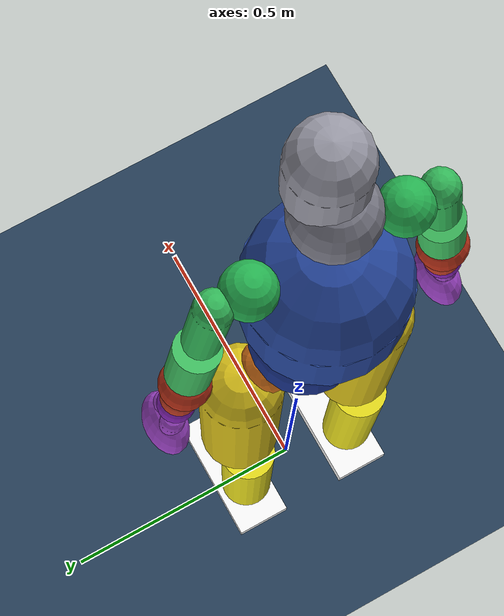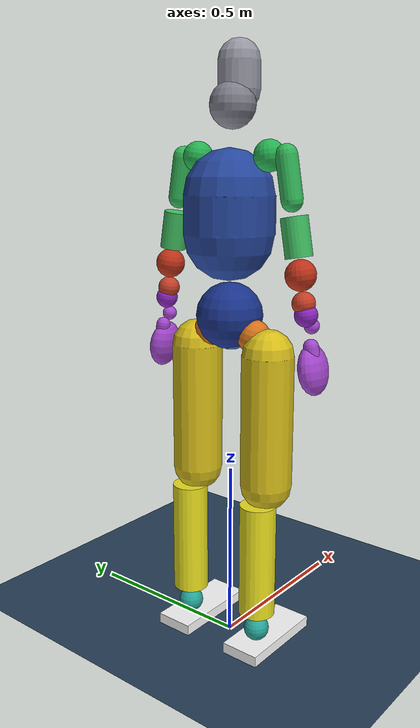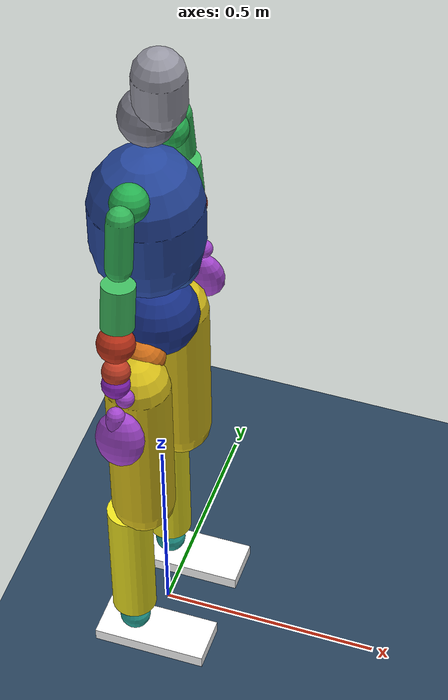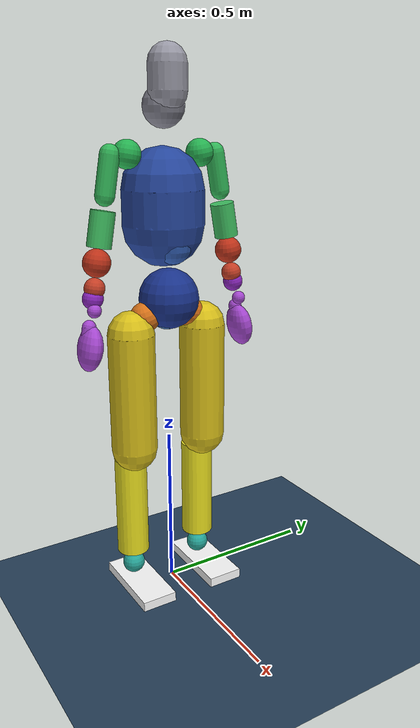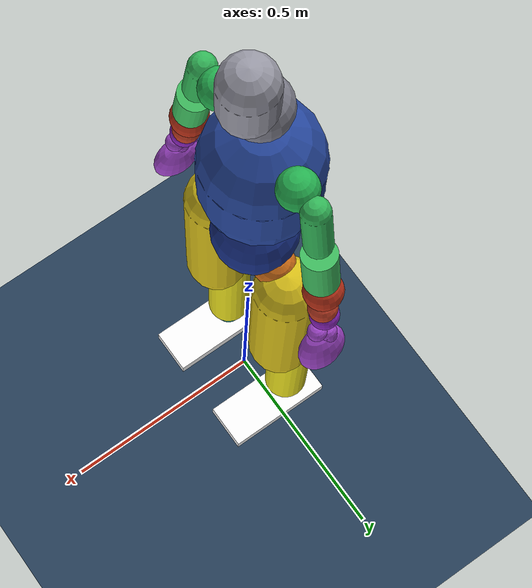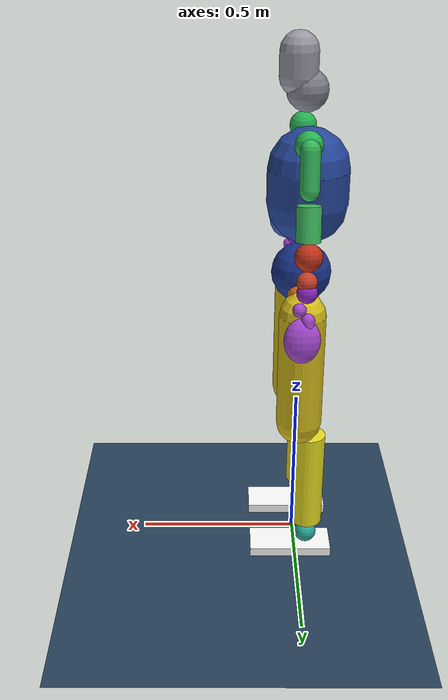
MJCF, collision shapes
<mujoco model="walker_astron_v1_wf">
  <compiler angle="radian" meshdir="../meshes" boundmass="0.0001" />
  <statistic meansize="0.153242" extent="1.93355" center="-0.0171695 0.000234755 -0.0746939" />
  <default>
    <joint damping="1.0" frictionloss="0.2" armature="0.01" />
    <!-- IsaacLab trains this robot with self-collisions disabled. Robot geoms
         keep contype=1 so they still collide with the floor's conaffinity=1. -->
    <geom conaffinity="0" />
    <default class="link">
      <default class="visual">
        <geom type="mesh" contype="0" conaffinity="0" group="1" density="0" rgba="0.75294 0.75294 0.75294 1" />
      </default>
    </default>
  </default>
  <asset>
    <mesh name="base_link" file="base_link.STL" />
    <mesh name="waist_yaw_link" file="waist_yaw_link.STL" />
    <mesh name="waist_pitch_link" file="waist_pitch_link.STL" />
    <mesh name="waist_roll_link" file="waist_roll_link.STL" />
    <mesh name="waist_roll_link1" file="waist_roll_link1.STL" />
    <mesh name="head_yaw_link" file="head_yaw_link.STL" />
    <mesh name="head_pitch_link" file="head_pitch_link.STL" />
    <mesh name="head_pitch_link1" file="head_pitch_link1.STL" />
    <mesh name="L_hip_pitch_link" file="L_hip_pitch_link.STL" />
    <mesh name="L_hip_roll_link" file="L_hip_roll_link.STL" />
    <mesh name="L_hip_yaw_link" file="L_hip_yaw_link.STL" />
    <mesh name="L_knee_pitch_link" file="L_knee_pitch_link.STL" />
    <mesh name="L_ankle_pitch_link" file="L_ankle_pitch_link.STL" />
    <mesh name="L_ankle_roll_link" file="L_ankle_roll_link.STL" />
    <mesh name="R_hip_pitch_link" file="R_hip_pitch_link.STL" />
    <mesh name="R_hip_roll_link" file="R_hip_roll_link.STL" />
    <mesh name="R_hip_yaw_link" file="R_hip_yaw_link.STL" />
    <mesh name="R_knee_pitch_link" file="R_knee_pitch_link.STL" />
    <mesh name="R_ankle_pitch_link" file="R_ankle_pitch_link.STL" />
    <mesh name="R_ankle_roll_link" file="R_ankle_roll_link.STL" />
    <mesh name="L_shoulder_pitch_link" file="L_shoulder_pitch_link.STL" />
    <mesh name="L_shoulder_roll_link" file="L_shoulder_roll_link.STL" />
    <mesh name="L_shoulder_yaw_link" file="L_shoulder_yaw_link.STL" />
    <mesh name="L_elbow_pitch_link" file="L_elbow_pitch_link.STL" />
    <mesh name="L_elbow_yaw_link" file="L_elbow_yaw_link.STL" />
    <mesh name="L_wrist_pitch_link" file="L_wrist_pitch_link.STL" />
    <mesh name="L_wrist_roll_link" file="L_wrist_roll_link.STL" />
    <mesh name="left_rubber_hand" file="left_rubber_hand.STL" />
    <mesh name="R_shoulder_pitch_link" file="R_shoulder_pitch_link.STL" />
    <mesh name="R_shoulder_roll_link" file="R_shoulder_roll_link.STL" />
    <mesh name="R_shoulder_yaw_link" file="R_shoulder_yaw_link.STL" />
    <mesh name="R_elbow_pitch_link" file="R_elbow_pitch_link.STL" />
    <mesh name="R_elbow_yaw_link" file="R_elbow_yaw_link.STL" />
    <mesh name="R_wrist_pitch_link" file="R_wrist_pitch_link.STL" />
    <mesh name="R_wrist_roll_link" file="R_wrist_roll_link.STL" />
    <mesh name="right_rubber_hand" file="right_rubber_hand.STL" />
  </asset>
  <worldbody>
    <body name="base_link" pos="0 0 0.91">
      <inertial pos="-0.000607409 0 -0.00390457" quat="0.707095 0.70711 0.00349219 -0.000861889" mass="5.32923" diaginertia="0.0256183 0.0239746 0.0175109" />
      <joint name="floating_base" type="free" />
      <geom type="mesh" mesh="base_link" class="visual" />
      <geom name="base_link_collision" type="sphere" size="0.06" pos="0 0 -0.004" rgba="0.22 0.40 0.65 0.3"/>
      <site name="imu" size="0.01"/>
      <body name="L_hip_pitch_link" pos="0 0.073499 -0.019694" quat="0.991445 -0.130526 0 0">
        <inertial pos="0.0048541 0.0500696 -0.0150271" quat="0.245039 0.652073 0.417654 0.583372" mass="1.65569" diaginertia="0.00293392 0.00256263 0.00240876" />
        <joint name="L_hip_pitch_joint" pos="0 0 0" axis="0 1 0" limited="true" range="-2.98 2.53" actuatorfrcrange="-210 210" armature="0.199" />
        <geom type="mesh" mesh="L_hip_pitch_link" class="visual" />
        <geom name="L_hip_pitch_collision" type="sphere" size="0.045" rgba="0.85 0.45 0.10 0.3"/>
        <body name="L_hip_roll_link" pos="0 0.0535795 -0.02" quat="0.991445 0.130526 0 0">
          <inertial pos="0.00120874 0.00203626 -0.0330367" quat="0.513666 0.487315 0.496385 0.502267" mass="0.514808" diaginertia="0.00158831 0.0015264 0.000682669" />
          <joint name="L_hip_roll_joint" pos="0 0 0" axis="1 0 0" limited="true" range="-0.314 2.059" actuatorfrcrange="-165 165" armature="0.064" />
          <geom type="mesh" mesh="L_hip_roll_link" class="visual" />
          <geom name="L_hip_roll_collision" type="sphere" size="0.065" pos="0 0 -0.033" rgba="0.90 0.62 0.15 0.3"/>
          <body name="L_hip_yaw_link" pos="0 0 -0.0621">
            <inertial pos="-0.00120768 -0.00740878 -0.123895" quat="0.723017 0.011601 0.0200665 0.690441" mass="5.13193" diaginertia="0.0446202 0.0424782 0.0109089" />
            <joint name="L_hip_yaw_joint" pos="0 0 0" axis="0 0 1" limited="true" range="-2.146 3.246" actuatorfrcrange="-110 110" armature="0.054" />
            <geom type="mesh" mesh="L_hip_yaw_link" class="visual" />
            <geom name="L_hip_yaw_collision" type="capsule" size="0.07 0.18" pos="0 0 -0.13" rgba="0.85 0.75 0.10 0.3"/>
            <body name="L_knee_pitch_link" pos="-0.035 0 -0.3179">
              <inertial pos="0.00270804 3.653e-05 -0.160407" quat="0.705286 0.0123666 0.015597 0.708643" mass="3.32222" diaginertia="0.0369622 0.0367307 0.00346204" />
              <joint name="L_knee_pitch_joint" pos="0 0 0" axis="0 1 0" limited="true" range="0.09 2.478" actuatorfrcrange="-210 210" armature="0.199" />
              <geom type="mesh" mesh="L_knee_pitch_link" class="visual" />
              <geom name="L_knee_pitch_collision" type="cylinder" size="0.05 0.16" pos="0 0 -0.2" rgba="0.92 0.88 0.12 0.3"/>
              <body name="L_ankle_pitch_link" pos="0 0 -0.41">
                <inertial pos="-0.00012374 -0.00221434 -0.0057231" quat="0.0409104 0.70465 0.0378602 0.707362" mass="0.110584" diaginertia="4.6937e-05 3.42735e-05 2.57096e-05" />
                <joint name="L_ankle_pitch_joint" pos="0 0 0" axis="0 1 0" limited="true" range="-1.012 0.488" actuatorfrcrange="-60 60" armature="0.016" />
                <geom type="mesh" mesh="L_ankle_pitch_link" class="visual" />
                <geom name="L_ankle_pitch_collision" type="sphere" size="0.035" rgba="0.15 0.65 0.60 0.3"/>
                <body name="L_ankle_roll_link" pos="0 0 -0.012">
                  <inertial pos="0.0340591 2.01976e-06 -0.0209935" quat="-4.35039e-05 0.733437 -6.93434e-06 0.679758" mass="0.826971" diaginertia="0.00492009 0.00442451 0.000968886" />
                  <joint name="L_ankle_roll_joint" pos="0 0 0" axis="1 0 0" limited="true" range="-0.401 0.401" actuatorfrcrange="-60 60" armature="0.016" />
                  <geom type="mesh" mesh="L_ankle_roll_link" class="visual" />
                  <geom name="L_ankle_roll_collision" type="box" size="0.13 0.055 0.015" pos="0.05 0 -0.035" rgba="1 1 1 0.3"/>
                  <geom name="L_foot_end_outer"      pos="-0.049  0.0  -0.045" size="0.005 0.005" type="cylinder" rgba="0.10 0.50 0.50 1" contype="0" conaffinity="0"/>
                  <geom name="L_foot_front_outer"    size="0.01 0.001" pos="0.155 -0.03 -0.045" type="cylinder" rgba="0.10 0.50 0.50 1" contype="0" conaffinity="0"/>
                  <geom name="L_foot_front_inner"    size="0.01 0.001" pos="0.145  0.03 -0.045" type="cylinder" rgba="0.10 0.50 0.50 1" contype="0" conaffinity="0"/>
                  <geom name="L_foot_mid_outer"      size="0.01 0.001" pos="0.045 -0.02 -0.045" type="cylinder" rgba="0.10 0.50 0.50 1" contype="0" conaffinity="0"/>
                  <geom name="L_foot_mid_inner"      size="0.01 0.001" pos="0.045  0.02 -0.045" type="cylinder" rgba="0.10 0.50 0.50 1" contype="0" conaffinity="0"/>
                  <geom name="L_foot_strip_outer"    size="0.01 0.001" pos="0.095 -0.01 -0.045" type="cylinder" rgba="0.10 0.50 0.50 1" contype="0" conaffinity="0"/>
                  <geom name="toe1_left_collision"   size="0.01 0.015" pos="0.155  0.03 -0.045" type="cylinder" rgba="0.10 0.50 0.50 1" contype="0" conaffinity="0"/>
                  <geom name="toe2_left_collision"   size="0.01 0.015" pos="0.155 -0.03 -0.045" type="cylinder" rgba="0.10 0.50 0.50 1" contype="0" conaffinity="0"/>
                  <geom name="foot_left_sole" type="sphere" size="0.005" pos="0 0 -0.05" rgba="0 0 0 0" contype="0" conaffinity="0"/>
                  <site name="left_foot_end" pos="0.15 0 -0.03" size="0.008" rgba="0 1 0 1"/>
                  <site name="left_foot_force" pos="0 0 -0.05"/>
                  <site name="left_foot_torque" pos="0 0 -0.05"/>
                </body>
              </body>
            </body>
          </body>
        </body>
      </body>
      <body name="R_hip_pitch_link" pos="0 -0.0734226 -0.0196735" quat="0.991445 0.130526 0 0">
        <inertial pos="0.0062436 -0.0504262 -0.014716" quat="0.519984 0.459924 0.700462 0.165648" mass="1.65592" diaginertia="0.00288142 0.00250814 0.00239465" />
        <joint name="R_hip_pitch_joint" pos="0 0 0" axis="0 1 0" limited="true" range="-2.98 2.53" actuatorfrcrange="-210 210" armature="0.199" />
        <geom type="mesh" mesh="R_hip_pitch_link" class="visual" />
        <geom name="R_hip_pitch_collision" type="sphere" size="0.045" rgba="0.85 0.45 0.10 0.3"/>
        <body name="R_hip_roll_link" pos="0 -0.053579 -0.02" quat="0.991445 -0.130526 0 0">
          <inertial pos="0.00120761 -0.00204745 -0.033039" quat="0.502185 0.496301 0.487383 0.513764" mass="0.514808" diaginertia="0.00158819 0.00152639 0.000682655" />
          <joint name="R_hip_roll_joint" pos="0 0 0" axis="1 0 0" limited="true" range="-2.059 0.314" actuatorfrcrange="-165 165" armature="0.064" />
          <geom type="mesh" mesh="R_hip_roll_link" class="visual" />
          <geom name="R_hip_roll_collision" type="sphere" size="0.065" pos="0 0 -0.033" rgba="0.90 0.62 0.15 0.3"/>
          <body name="R_hip_yaw_link" pos="0 0 -0.0621">
            <inertial pos="-0.00120109 0.00740989 -0.123888" quat="0.688781 0.0189619 0.0104703 0.724645" mass="5.13155" diaginertia="0.0446208 0.04247 0.0109153" />
            <joint name="R_hip_yaw_joint" pos="0 0 0" axis="0 0 1" limited="true" range="-3.246 2.146" actuatorfrcrange="-110 110" armature="0.054" />
            <geom type="mesh" mesh="R_hip_yaw_link" class="visual" />
            <geom name="R_hip_yaw_collision" type="capsule" size="0.07 0.18" pos="0 0 -0.13" rgba="0.85 0.75 0.10 0.3"/>
            <body name="R_knee_pitch_link" pos="-0.035 0 -0.3179">
              <inertial pos="0.00271353 -0.00017413 -0.160478" quat="0.734924 0.0149851 0.0127119 0.677864" mass="3.32312" diaginertia="0.0369759 0.0367282 0.00345006" />
              <joint name="R_knee_pitch_joint" pos="0 0 0" axis="0 1 0" limited="true" range="0.09 2.478" actuatorfrcrange="-210 210" armature="0.199" />
              <geom type="mesh" mesh="R_knee_pitch_link" class="visual" />
              <geom name="R_knee_pitch_collision" type="cylinder" size="0.05 0.16" pos="0 0 -0.2" rgba="0.92 0.88 0.12 0.3"/>
              <body name="R_ankle_pitch_link" pos="0 0 -0.41">
                <inertial pos="0.00012374 0.00221434 -0.0057231" quat="-0.0378602 0.707362 -0.0409104 0.70465" mass="0.110584" diaginertia="4.6937e-05 3.42735e-05 2.57096e-05" />
                <joint name="R_ankle_pitch_joint" pos="0 0 0" axis="0 1 0" limited="true" range="-1.012 0.488" actuatorfrcrange="-60 60" armature="0.016" />
                <geom type="mesh" mesh="R_ankle_pitch_link" class="visual" />
                <geom name="R_ankle_pitch_collision" type="sphere" size="0.035" rgba="0.15 0.65 0.60 0.3"/>
                <body name="R_ankle_roll_link" pos="0 0 -0.012">
                  <inertial pos="0.0340591 2.01976e-06 -0.0209935" quat="-4.35039e-05 0.733437 -6.93434e-06 0.679758" mass="0.826971" diaginertia="0.00492009 0.00442451 0.000968886" />
                  <joint name="R_ankle_roll_joint" pos="0 0 0" axis="1 0 0" limited="true" range="-0.401 0.401" actuatorfrcrange="-60 60" armature="0.016" />
                  <geom type="mesh" mesh="R_ankle_roll_link" class="visual" />
                  <geom name="R_ankle_roll_collision" type="box" size="0.13 0.055 0.015" pos="0.05 0 -0.035" rgba="1 1 1 0.3"/>
                  <geom name="R_foot_end_outer"      pos="-0.049  0.0  -0.045" size="0.005 0.005" type="cylinder" rgba="0.10 0.50 0.50 1" contype="0" conaffinity="0"/>
                  <geom name="R_foot_front_outer"    size="0.01 0.001" pos="0.155 -0.03 -0.045" type="cylinder" rgba="0.10 0.50 0.50 1" contype="0" conaffinity="0"/>
                  <geom name="R_foot_front_inner"    size="0.01 0.001" pos="0.145  0.03 -0.045" type="cylinder" rgba="0.10 0.50 0.50 1" contype="0" conaffinity="0"/>
                  <geom name="R_foot_mid_outer"      size="0.01 0.001" pos="0.045 -0.02 -0.045" type="cylinder" rgba="0.10 0.50 0.50 1" contype="0" conaffinity="0"/>
                  <geom name="R_foot_mid_inner"      size="0.01 0.001" pos="0.045  0.02 -0.045" type="cylinder" rgba="0.10 0.50 0.50 1" contype="0" conaffinity="0"/>
                  <geom name="R_foot_strip_outer"    size="0.01 0.001" pos="0.095 -0.01 -0.045" type="cylinder" rgba="0.10 0.50 0.50 1" contype="0" conaffinity="0"/>
                  <geom name="toe1_right_collision"  size="0.01 0.015" pos="0.155  0.03 -0.045" type="cylinder" rgba="0.10 0.50 0.50 1" contype="0" conaffinity="0"/>
                  <geom name="toe2_right_collision"  size="0.01 0.015" pos="0.155 -0.03 -0.045" type="cylinder" rgba="0.10 0.50 0.50 1" contype="0" conaffinity="0"/>
                  <geom name="foot_right_sole" type="sphere" size="0.005" pos="0 0 -0.05" rgba="0 0 0 0" contype="0" conaffinity="0"/>
                  <site name="right_foot_end" pos="0.15 0 -0.03" size="0.008" rgba="1 0 0 1"/>
                  <site name="right_foot_force" pos="0 0 -0.05"/>
                  <site name="right_foot_torque" pos="0 0 -0.05"/>
                </body>
              </body>
            </body>
          </body>
        </body>
      </body>
      <body name="waist_yaw_link" pos="0 0 0.0766406">
        <inertial pos="0.00270178 -0.00088235 0.0369526" quat="0.400373 0.42401 -0.529445 0.616121" mass="2.0613" diaginertia="0.0057903 0.00442111 0.00398297" />
        <joint name="waist_yaw_joint" pos="0 0 0" axis="0 0 1" limited="true" range="-2.792 2.792" actuatorfrcrange="-63 63" armature="0.0278" />
        <geom type="mesh" mesh="waist_yaw_link" class="visual" />
        <geom name="waist_yaw_collision" type="sphere" size="0.09" pos="0 0.007 -0.049" rgba="0.10 0.20 0.55 0.3"/>
        <body name="waist_pitch_link" pos="0.04 0 0.1155">
          <inertial pos="-0.00141152 -0.00378014 -1.015e-05" quat="0.489842 0.49442 -0.504432 0.51103" mass="1.56616" diaginertia="0.00200827 0.00193456 0.0014908" />
          <joint name="waist_pitch_joint" pos="0 0 0" axis="0 1 0" limited="true" range="-0.017 1.221" actuatorfrcrange="-165 165" armature="0.064" />
          <geom type="mesh" mesh="waist_pitch_link" class="visual" />
          <geom name="waist_pitch_collision" type="sphere" size="0.055" pos="0.002 0 -0.001" rgba="0.20 0.38 0.72 0.3"/>
          <body name="waist_roll_link" pos="-0.0515 0 0">
            <inertial pos="0.000986087 0.000143521 0.174845" quat="0.00246059 0.754294 -0.00223334 0.656528" mass="14.7206" diaginertia="0.0812274 0.220595 0.242347" />
            <joint name="waist_roll_joint" pos="0 0 0" axis="1 0 0" limited="true" range="-0.75 0.75" actuatorfrcrange="-110 110" armature="0.054" />
            <geom type="mesh" mesh="waist_roll_link" class="visual" />
            <geom type="mesh" mesh="head_yaw_link" pos="0.0115 0 0.34305" class="visual" />
            <geom type="mesh" mesh="head_pitch_link" pos="0.0115 0 0.36955" class="visual" />
            <geom size="0.0075 0.0075 0.002" pos="0.0115 0 0.36955" quat="0.707107 0 0 -0.707107" type="box" class="visual" />
            <geom name="waist_roll_collision" type="capsule" size="0.12 0.05" pos="0 0 0.1" rgba="0.15 0.28 0.62 0.3"/>
            <geom name="head_yaw_collision" type="sphere" size="0.06" pos="0.0115 0 0.37305" rgba="0.50 0.50 0.55 0.3"/>
            <geom name="head_pitch_collision" type="capsule" size="0.055 0.035" pos="0.0375 0 0.44455" rgba="0.60 0.60 0.65 0.3"/>
            <body name="L_shoulder_pitch_link" pos="0.0115 0.114262 0.247779" quat="0.996195 0.0871557 0 0">
              <inertial pos="0.00379496 0.0469029 -4.625e-05" quat="0.530969 0.396641 -0.559055 0.498202" mass="0.798422" diaginertia="0.000564005 0.000537541 0.000482404" />
              <joint name="L_shoulder_pitch_joint" pos="0 0 0" axis="0 1 0" limited="true" range="-3.089 2.565" actuatorfrcrange="-60 60" armature="0.0255" />
              <geom type="mesh" mesh="L_shoulder_pitch_link" class="visual" />
              <geom name="L_shoulder_pitch_collision" type="sphere" size="0.04" rgba="0.15 0.70 0.32 0.3"/>
              <body name="L_shoulder_roll_link" pos="0 0.0499 0">
                <inertial pos="0.00388223 0.00090177 -0.0814423" quat="0.872628 0.0372716 0.135609 0.467698" mass="0.954452" diaginertia="0.00175475 0.00170192 0.000762658" />
                <joint name="L_shoulder_roll_joint" pos="0 0 0" axis="1 0 0" limited="true" range="-0.139 1.884" actuatorfrcrange="-60 60" armature="0.0205" />
                <geom type="mesh" mesh="L_shoulder_roll_link" class="visual" />
                <geom name="L_shoulder_roll_collision" type="capsule" size="0.028 0.055" pos="0 0 -0.063" rgba="0.20 0.72 0.35 0.3"/>
                <body name="L_shoulder_yaw_link" pos="0 0 -0.12675">
                  <inertial pos="-0.00111624 -0.00509191 -0.0777859" quat="0.726587 -0.0403648 0.0185064 0.685638" mass="0.951576" diaginertia="0.0013695 0.00135249 0.000633425" />
                  <joint name="L_shoulder_yaw_joint" pos="0 0 0" axis="0 0 1" limited="true" range="-2.844 2.844" actuatorfrcrange="-25 25" armature="0.007" />
                  <geom type="mesh" mesh="L_shoulder_yaw_link" class="visual" />
                  <geom name="L_shoulder_yaw_collision" type="cylinder" size="0.035 0.05" pos="0 0 -0.08" rgba="0.25 0.75 0.38 0.3"/>
                  <body name="L_elbow_pitch_link" pos="0 0 -0.09325">
                    <inertial pos="-0.00109585 -0.00301164 -0.0816298" quat="0.965846 0.115424 -0.0658207 0.222454" mass="0.910303" diaginertia="0.00151258 0.00147365 0.000681226" />
                    <joint name="L_elbow_pitch_joint" pos="0 0 0" axis="0 1 0" limited="true" range="-2.2689 0.104" actuatorfrcrange="-25 25" armature="0.007" />
                    <geom type="mesh" mesh="L_elbow_pitch_link" class="visual" />
                    <geom name="L_elbow_pitch_collision" type="sphere" size="0.04" pos="-0.002 0 -0.08" rgba="0.75 0.20 0.10 0.3"/>
                    <body name="L_elbow_yaw_link" pos="0 0 -0.12425">
                      <inertial pos="0.00041996 0.00835103 -0.0205441" quat="0.658348 0.351515 -0.319902 0.583676" mass="0.0923308" diaginertia="8.7254e-05 8.15789e-05 5.94071e-05" />
                      <joint name="L_elbow_yaw_joint" pos="0 0 0" axis="0 0 1" limited="true" range="-2.844 2.844" actuatorfrcrange="-25 25" armature="0.007" />
                      <geom type="mesh" mesh="L_elbow_yaw_link" class="visual" />
                      <geom name="L_elbow_yaw_collision" type="sphere" size="0.03" pos="0.001 -0.002 -0.026" rgba="0.78 0.25 0.15 0.3"/>
                      <body name="L_wrist_pitch_link" pos="0 0 -0.05575">
                        <inertial pos="0.00244378 0.00252389 -0.0194028" quat="0.55381 -0.111462 0.0117937 0.825064" mass="0.498236" diaginertia="0.00033589 0.000333064 0.000165096" />
                        <joint name="L_wrist_pitch_joint" pos="0 0 0" axis="0 1 0" limited="true" range="-0.68 0.68" actuatorfrcrange="-6 6" armature="0.003" />
                        <geom type="mesh" mesh="L_wrist_pitch_link" class="visual" />
                        <geom name="L_wrist_pitch_collision" type="sphere" size="0.03" rgba="0.55 0.15 0.75 0.3"/>
                        <body name="L_wrist_roll_link" pos="0 0 -0.0399515">
                          <inertial pos="0.000910776 -1.53008e-06 -0.00233324" quat="0.707121 -0.000654258 -0.000622034 0.707092" mass="0.447666" diaginertia="0.000471097 0.000342702 0.000191386" />
                          <joint name="L_wrist_roll_joint" pos="0 0 0" axis="1 0 0" limited="true" range="-1.57 1.57" actuatorfrcrange="-6 6" armature="0.003" />
                          <geom type="mesh" mesh="L_wrist_roll_link" class="visual" />
                          <geom pos="0 0 -0.04" quat="0.706826 0 0.707387 0" type="mesh" mesh="left_rubber_hand" class="visual" />
                          <geom name="L_wrist_roll_collision" type="sphere" size="0.02" pos="0.02 0 -0.01" rgba="0.65 0.28 0.82 0.3"/>
                          <geom name="hand_l_base_collision" type="capsule" size="0.02 0.02" pos="-0.004 -0.002 -0.06" rgba="0.65 0.28 0.82 0.5"/>
                          <geom name="hand_l_palm_collision" type="ellipsoid" size="0.053 0.033 0.066" pos="0.01 -0.005 -0.10" rgba="0.65 0.28 0.82 0.5"/>
                        </body>
                      </body>
                    </body>
                  </body>
                </body>
              </body>
            </body>
            <body name="R_shoulder_pitch_link" pos="0.0115 -0.11481 0.247779" quat="0.996195 -0.0871557 0 0">
              <inertial pos="0.00384148 -0.046973 7.92e-06" quat="0.443496 0.539557 -0.491243 0.520451" mass="0.79994" diaginertia="0.000563949 0.000536866 0.000485635" />
              <joint name="R_shoulder_pitch_joint" pos="0 0 0" axis="0 1 0" limited="true" range="-3.089 2.565" actuatorfrcrange="-60 60" armature="0.0255" />
              <geom type="mesh" mesh="R_shoulder_pitch_link" class="visual" />
              <geom name="R_shoulder_pitch_collision" type="sphere" size="0.04" rgba="0.15 0.70 0.32 0.3"/>
              <body name="R_shoulder_roll_link" pos="0 -0.0499 0">
                <inertial pos="0.00374986 -0.00090026 -0.0814559" quat="0.475045 0.134535 0.0380022 0.868786" mass="0.954183" diaginertia="0.00175385 0.00170009 0.000764477" />
                <joint name="R_shoulder_roll_joint" pos="0 0 0" axis="1 0 0" limited="true" range="-1.884 0.139" actuatorfrcrange="-60 60" armature="0.0205" />
                <geom type="mesh" mesh="R_shoulder_roll_link" class="visual" />
                <geom name="R_shoulder_roll_collision" type="capsule" size="0.028 0.055" pos="0 0 -0.063" rgba="0.20 0.72 0.35 0.3"/>
                <body name="R_shoulder_yaw_link" pos="0 0 -0.12675">
                  <inertial pos="-0.00111484 -0.00508263 -0.0776773" quat="0.726766 -0.0401509 0.0186017 0.685458" mass="0.952713" diaginertia="0.00137689 0.00135996 0.000633578" />
                  <joint name="R_shoulder_yaw_joint" pos="0 0 0" axis="0 0 1" limited="true" range="-2.844 2.844" actuatorfrcrange="-25 25" armature="0.007" />
                  <geom type="mesh" mesh="R_shoulder_yaw_link" class="visual" />
                  <geom name="R_shoulder_yaw_collision" type="cylinder" size="0.035 0.05" pos="0 0 -0.08" rgba="0.25 0.75 0.38 0.3"/>
                  <body name="R_elbow_pitch_link" pos="0 0 -0.09325">
                    <inertial pos="-0.00109585 -0.00301164 -0.0816298" quat="0.965858 0.115427 -0.0658144 0.222405" mass="0.910303" diaginertia="0.00151259 0.00147365 0.000681226" />
                    <joint name="R_elbow_pitch_joint" pos="0 0 0" axis="0 1 0" limited="true" range="-2.2689 0.104" actuatorfrcrange="-25 25" armature="0.007" />
                    <geom type="mesh" mesh="R_elbow_pitch_link" class="visual" />
                    <geom name="R_elbow_pitch_collision" type="sphere" size="0.04" pos="-0.002 0 -0.08" rgba="0.75 0.20 0.10 0.3"/>
                    <body name="R_elbow_yaw_link" pos="0 0 -0.12425">
                      <inertial pos="0.00042308 0.00819376 -0.0202823" quat="0.654539 0.356415 -0.325593 0.581839" mass="0.0916493" diaginertia="8.62948e-05 8.04003e-05 5.91449e-05" />
                      <joint name="R_elbow_yaw_joint" pos="0 0 0" axis="0 0 1" limited="true" range="-2.844 2.844" actuatorfrcrange="-25 25" armature="0.007" />
                      <geom type="mesh" mesh="R_elbow_yaw_link" class="visual" />
                      <geom name="R_elbow_yaw_collision" type="sphere" size="0.03" pos="-0.001 0.002 -0.026" rgba="0.78 0.25 0.15 0.3"/>
                      <body name="R_wrist_pitch_link" pos="0 0 -0.05575">
                        <inertial pos="0.00244378 0.00252389 -0.0194028" quat="0.55381 -0.111462 0.0117937 0.825064" mass="0.498236" diaginertia="0.00033589 0.000333064 0.000165096" />
                        <joint name="R_wrist_pitch_joint" pos="0 0 0" axis="0 1 0" limited="true" range="-0.68 0.68" actuatorfrcrange="-6 6" armature="0.003" />
                        <geom type="mesh" mesh="R_wrist_pitch_link" class="visual" />
                        <geom name="R_wrist_pitch_collision" type="sphere" size="0.03" rgba="0.55 0.15 0.75 0.3"/>
                        <body name="R_wrist_roll_link" pos="0 0 -0.0399515">
                          <inertial pos="0.000910776 -1.53008e-06 -0.00233324" quat="0.707121 -0.000654258 -0.000622034 0.707092" mass="0.447666" diaginertia="0.000471097 0.000342702 0.000191386"/>
                          <joint name="R_wrist_roll_joint" pos="0 0 0" axis="1 0 0" limited="true" range="-1.57 1.57" actuatorfrcrange="-6 6" armature="0.003" />
                          <geom type="mesh" mesh="R_wrist_roll_link" class="visual" />
                          <geom pos="0 0 -0.04" quat="0.706826 0 0.707387 0" type="mesh" mesh="right_rubber_hand" class="visual" />
                          <geom name="R_wrist_roll_collision" type="sphere" size="0.02" pos="0.02 0 0.01" rgba="0.65 0.28 0.82 0.3"/>
                          <geom name="hand_r_base_collision" type="capsule" size="0.02 0.02" pos="0.002 -0.002 -0.06" rgba="0.65 0.28 0.82 0.5"/>
                          <geom name="hand_r_palm_collision" type="ellipsoid" size="0.053 0.033 0.066" pos="0.01 0.005 -0.10" rgba="0.65 0.28 0.82 0.5"/>
                        </body>
                      </body>
                    </body>
                  </body>
                </body>
              </body>
            </body>
          </body>
        </body>
      </body>
    </body>
  </worldbody>
  <sensor>
    <framequat name="orientation" objtype="site" objname="imu" />
    <gyro name="angular-velocity" site="imu" noise="0.005" cutoff="34.9" />
    <accelerometer name="linear-acceleration" site="imu" noise="0.01" cutoff="157" />
    <framepos name="position" objtype="site" objname="imu" />
    <framelinvel name="linear-velocity" objtype="site" objname="imu" />
    <force name="left-foot-force" site="left_foot_force" />
    <torque name="left-foot-torque" site="left_foot_torque" />
    <force name="right-foot-force" site="right_foot_force" />
    <torque name="right-foot-torque" site="right_foot_torque" />
  </sensor>
  <actuator>
    <position name="L_hip_pitch_joint" joint="L_hip_pitch_joint" kp="100" kv="5" ctrllimited="true" ctrlrange="-3.14 3.14" forcelimited="true" forcerange="-210 210" />
    <position name="L_hip_roll_joint" joint="L_hip_roll_joint" kp="100" kv="5" ctrllimited="true" ctrlrange="-3.14 3.14" forcelimited="true" forcerange="-165 165" />
    <position name="L_hip_yaw_joint" joint="L_hip_yaw_joint" kp="100" kv="5" ctrllimited="true" ctrlrange="-3.14 3.14" forcelimited="true" forcerange="-110 110" />
    <position name="L_knee_pitch_joint" joint="L_knee_pitch_joint" kp="100" kv="5" ctrllimited="true" ctrlrange="-3.14 3.14" forcelimited="true" forcerange="-210 210" />
    <position name="L_ankle_pitch_joint" joint="L_ankle_pitch_joint" kp="100" kv="5" ctrllimited="true" ctrlrange="-3.14 3.14" forcelimited="true" forcerange="-60 60" />
    <position name="L_ankle_roll_joint" joint="L_ankle_roll_joint" kp="100" kv="5" ctrllimited="true" ctrlrange="-3.14 3.14" forcelimited="true" forcerange="-60 60" />
    <position name="R_hip_pitch_joint" joint="R_hip_pitch_joint" kp="100" kv="5" ctrllimited="true" ctrlrange="-3.14 3.14" forcelimited="true" forcerange="-210 210" />
    <position name="R_hip_roll_joint" joint="R_hip_roll_joint" kp="100" kv="5" ctrllimited="true" ctrlrange="-3.14 3.14" forcelimited="true" forcerange="-165 165" />
    <position name="R_hip_yaw_joint" joint="R_hip_yaw_joint" kp="100" kv="5" ctrllimited="true" ctrlrange="-3.14 3.14" forcelimited="true" forcerange="-110 110" />
    <position name="R_knee_pitch_joint" joint="R_knee_pitch_joint" kp="100" kv="5" ctrllimited="true" ctrlrange="-3.14 3.14" forcelimited="true" forcerange="-210 210" />
    <position name="R_ankle_pitch_joint" joint="R_ankle_pitch_joint" kp="100" kv="5" ctrllimited="true" ctrlrange="-3.14 3.14" forcelimited="true" forcerange="-60 60" />
    <position name="R_ankle_roll_joint" joint="R_ankle_roll_joint" kp="100" kv="5" ctrllimited="true" ctrlrange="-3.14 3.14" forcelimited="true" forcerange="-60 60" />
    <position name="waist_yaw_joint" joint="waist_yaw_joint" kp="100" kv="5" ctrllimited="true" ctrlrange="-3.14 3.14" forcelimited="true" forcerange="-63 63" />
    <position name="waist_pitch_joint" joint="waist_pitch_joint" kp="100" kv="5" ctrllimited="true" ctrlrange="-3.14 3.14" forcelimited="true" forcerange="-165 165" />
    <position name="waist_roll_joint" joint="waist_roll_joint" kp="100" kv="5" ctrllimited="true" ctrlrange="-3.14 3.14" forcelimited="true" forcerange="-110 110" />
    <position name="L_shoulder_pitch_joint" joint="L_shoulder_pitch_joint" kp="100" kv="5" ctrllimited="true" ctrlrange="-3.14 3.14" forcelimited="true" forcerange="-60 60" />
    <position name="L_shoulder_roll_joint" joint="L_shoulder_roll_joint" kp="100" kv="5" ctrllimited="true" ctrlrange="-3.14 3.14" forcelimited="true" forcerange="-60 60" />
    <position name="L_shoulder_yaw_joint" joint="L_shoulder_yaw_joint" kp="100" kv="5" ctrllimited="true" ctrlrange="-3.14 3.14" forcelimited="true" forcerange="-25 25" />
    <position name="L_elbow_pitch_joint" joint="L_elbow_pitch_joint" kp="100" kv="5" ctrllimited="true" ctrlrange="-3.14 3.14" forcelimited="true" forcerange="-25 25" />
    <position name="L_elbow_yaw_joint" joint="L_elbow_yaw_joint" kp="100" kv="5" ctrllimited="true" ctrlrange="-3.14 3.14" forcelimited="true" forcerange="-25 25" />
    <position name="L_wrist_pitch_joint" joint="L_wrist_pitch_joint" kp="100" kv="5" ctrllimited="true" ctrlrange="-3.14 3.14" forcelimited="true" forcerange="-6 6" />
    <position name="L_wrist_roll_joint" joint="L_wrist_roll_joint" kp="100" kv="5" ctrllimited="true" ctrlrange="-3.14 3.14" forcelimited="true" forcerange="-6 6" />
    <position name="R_shoulder_pitch_joint" joint="R_shoulder_pitch_joint" kp="100" kv="5" ctrllimited="true" ctrlrange="-3.14 3.14" forcelimited="true" forcerange="-60 60" />
    <position name="R_shoulder_roll_joint" joint="R_shoulder_roll_joint" kp="100" kv="5" ctrllimited="true" ctrlrange="-3.14 3.14" forcelimited="true" forcerange="-60 60" />
    <position name="R_shoulder_yaw_joint" joint="R_shoulder_yaw_joint" kp="100" kv="5" ctrllimited="true" ctrlrange="-3.14 3.14" forcelimited="true" forcerange="-25 25" />
    <position name="R_elbow_pitch_joint" joint="R_elbow_pitch_joint" kp="100" kv="5" ctrllimited="true" ctrlrange="-3.14 3.14" forcelimited="true" forcerange="-25 25" />
    <position name="R_elbow_yaw_joint" joint="R_elbow_yaw_joint" kp="100" kv="5" ctrllimited="true" ctrlrange="-3.14 3.14" forcelimited="true" forcerange="-25 25" />
    <position name="R_wrist_pitch_joint" joint="R_wrist_pitch_joint" kp="100" kv="5" ctrllimited="true" ctrlrange="-3.14 3.14" forcelimited="true" forcerange="-6 6" />
    <position name="R_wrist_roll_joint" joint="R_wrist_roll_joint" kp="100" kv="5" ctrllimited="true" ctrlrange="-3.14 3.14" forcelimited="true" forcerange="-6 6" />
  </actuator>
  <statistic center="1.0 0.7 1.0" extent="0.8" />
  <visual>
    <headlight diffuse="0.6 0.6 0.6" ambient="0.1 0.1 0.1" specular="0.9 0.9 0.9" />
    <rgba haze="0.15 0.25 0.35 1" />
    <global azimuth="-140" elevation="-20" />
  </visual>
  <asset>
    <texture type="skybox" builtin="flat" rgb1="0 0 0" rgb2="0 0 0" width="512" height="3072" />
    <texture type="2d" name="groundplane" builtin="checker" mark="edge" rgb1="0.2 0.3 0.4" rgb2="0.1 0.2 0.3" markrgb="0.8 0.8 0.8" width="300" height="300" />
    <material name="groundplane" texture="groundplane" texuniform="true" texrepeat="5 5" reflectance="0.2" />
  </asset>
  <worldbody>
    <light pos="1 0 3.5" dir="0 0 -1" directional="true" />
    <geom name="floor" size="0 0 0.05" type="plane" material="groundplane" contype="1" conaffinity="1" />
  </worldbody>
</mujoco>
